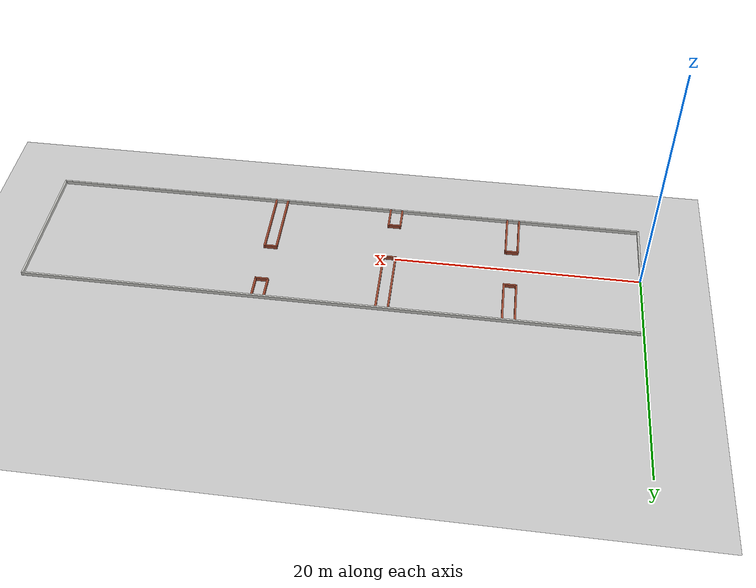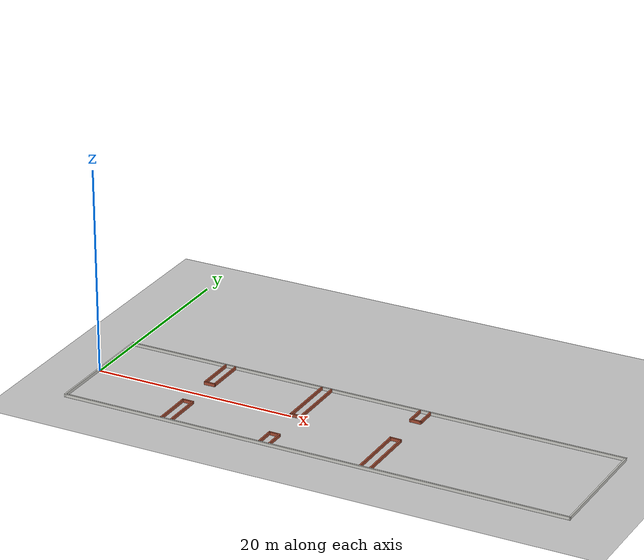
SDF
<sdf version="1.7">
 <world name="default">
  <light name="sun" type="directional">
   <pose>0 0 10 0 -0 0</pose>
   <diffuse>0.8 0.8 0.8 1</diffuse>
   <specular>0.2 0.2 0.2 1</specular>
   <attenuation>
    <range>1000</range>
    <constant>0.9</constant>
    <linear>0.01</linear>
    <quadratic>0.001</quadratic>
   </attenuation>
   <direction>-0.5 0.1 -0.9</direction>
   <spot><inner_angle>0</inner_angle><outer_angle>0</outer_angle><falloff>0</falloff></spot>
  </light>
  <model name="ground_plane">
   <static>1</static>
   <link name="link">
    <collision name="collision">
     <geometry><plane><normal>0 0 1</normal><size>100 100</size></plane></geometry>
     <surface>
      <contact><collide_bitmask>65535</collide_bitmask></contact>
      <friction><ode><mu>100</mu><mu2>50</mu2></ode></friction>
     </surface>
    </collision>
    <visual name="visual">
     <cast_shadows>0</cast_shadows>
     <geometry><plane><normal>0 0 1</normal><size>100 100</size></plane></geometry>
     <material>
      <script><uri>file://media/materials/scripts/gazebo.material</uri><name>Gazebo/Grey</name></script>
     </material>
    </visual>
   </link>
  </model>
  <gravity>0 0 -9.8</gravity>
  <magnetic_field>6e-06 2.3e-05 -4.2e-05</magnetic_field>
  <atmosphere type="adiabatic"/>
  <physics name="default_physics" default="0" type="ode">
   <max_step_size>0.001</max_step_size>
   <real_time_factor>1</real_time_factor>
   <real_time_update_rate>1000</real_time_update_rate>
  </physics>
  <scene><ambient>0.4 0.4 0.4 1</ambient><background>0.7 0.7 0.7 1</background><shadows>1</shadows></scene>
  <spherical_coordinates>
   <surface_model>EARTH_WGS84</surface_model>
   <latitude_deg>0</latitude_deg>
   <longitude_deg>0</longitude_deg>
   <elevation>0</elevation>
   <heading_deg>0</heading_deg>
  </spherical_coordinates>
  <model name="RaL_Tiles">
   <pose>25 0 0 0 -0 0</pose>
   <link name="Wall_0">
    <collision name="Wall_0_Collision">
     <geometry><box><size>12.15 0.15 0.3</size></box></geometry>
     <pose>0 0 0.15 0 -0 0</pose>
    </collision>
    <visual name="Wall_0_Visual">
     <pose>0 0 0.15 0 -0 0</pose>
     <geometry><box><size>12.15 0.15 0.3</size></box></geometry>
     <material>
      <script><uri>file://media/materials/scripts/gazebo.material</uri><name>Gazebo/CeilingTiled</name></script>
      <ambient>1 1 1 1</ambient>
     </material>
     <meta><layer>0</layer></meta>
    </visual>
    <pose>-25 0 0 0 -0 -1.5708</pose>
   </link>
   <link name="Wall_2">
    <collision name="Wall_2_Collision">
     <geometry><box><size>50.15 0.15 0.3</size></box></geometry>
     <pose>0 0 0.15 0 -0 0</pose>
    </collision>
    <visual name="Wall_2_Visual">
     <pose>0 0 0.15 0 -0 0</pose>
     <geometry><box><size>50.15 0.15 0.3</size></box></geometry>
     <material>
      <script><uri>file://media/materials/scripts/gazebo.material</uri><name>Gazebo/CeilingTiled</name></script>
      <ambient>1 1 1 1</ambient>
     </material>
     <meta><layer>0</layer></meta>
    </visual>
    <pose>0 6 0 0 -0 0</pose>
   </link>
   <link name="Wall_4">
    <collision name="Wall_4_Collision">
     <geometry><box><size>50.15 0.15 0.3</size></box></geometry>
     <pose>0 0 0.15 0 -0 0</pose>
    </collision>
    <visual name="Wall_4_Visual">
     <pose>0 0 0.15 0 -0 0</pose>
     <geometry><box><size>50.15 0.15 0.3</size></box></geometry>
     <material>
      <script><uri>file://media/materials/scripts/gazebo.material</uri><name>Gazebo/CeilingTiled</name></script>
      <ambient>1 1 1 1</ambient>
     </material>
     <meta><layer>0</layer></meta>
    </visual>
    <pose>0 -6 0 0 -0 0</pose>
   </link>
   <link name="Wall_6">
    <collision name="Wall_6_Collision">
     <geometry><box><size>12.15 0.15 0.3</size></box></geometry>
     <pose>0 0 0.15 0 -0 0</pose>
    </collision>
    <visual name="Wall_6_Visual">
     <pose>0 0 0.15 0 -0 0</pose>
     <geometry><box><size>12.15 0.15 0.3</size></box></geometry>
     <material>
      <script><uri>file://media/materials/scripts/gazebo.material</uri><name>Gazebo/CeilingTiled</name></script>
      <ambient>1 1 1 1</ambient>
     </material>
     <meta><layer>0</layer></meta>
    </visual>
    <pose>25 0 0 0 -0 -1.5708</pose>
   </link>
   <static>1</static>
  </model>
  <model name="RaL_Bricks">
   <pose>15.5375 -0 0 0 -0 0</pose>
   <link name="Wall_10">
    <collision name="Wall_10_Collision">
     <geometry><box><size>4.05 0.15 0.3</size></box></geometry>
     <pose>0 0 0.15 0 -0 0</pose>
    </collision>
    <visual name="Wall_10_Visual">
     <pose>0 0 0.15 0 -0 0</pose>
     <geometry><box><size>4.05 0.15 0.3</size></box></geometry>
     <material>
      <script><uri>file://media/materials/scripts/gazebo.material</uri><name>Gazebo/Bricks</name></script>
      <ambient>1 1 1 1</ambient>
     </material>
     <meta><layer>0</layer></meta>
    </visual>
    <pose>-4.5375 3.95 0 0 -0 -1.5708</pose>
   </link>
   <link name="Wall_12">
    <collision name="Wall_12_Collision">
     <geometry><box><size>1.15 0.15 0.3</size></box></geometry>
     <pose>0 0 0.15 0 -0 0</pose>
    </collision>
    <visual name="Wall_12_Visual">
     <pose>0 0 0.15 0 -0 0</pose>
     <geometry><box><size>1.15 0.15 0.3</size></box></geometry>
     <material>
      <script><uri>file://media/materials/scripts/gazebo.material</uri><name>Gazebo/Bricks</name></script>
      <ambient>1 1 1 1</ambient>
     </material>
     <meta><layer>0</layer></meta>
    </visual>
    <pose>-5.0375 2 0 0 -0 0</pose>
   </link>
   <link name="Wall_14">
    <collision name="Wall_14_Collision">
     <geometry><box><size>4.05 0.15 0.3</size></box></geometry>
     <pose>0 0 0.15 0 -0 0</pose>
    </collision>
    <visual name="Wall_14_Visual">
     <pose>0 0 0.15 0 -0 0</pose>
     <geometry><box><size>4.05 0.15 0.3</size></box></geometry>
     <material>
      <script><uri>file://media/materials/scripts/gazebo.material</uri><name>Gazebo/Bricks</name></script>
      <ambient>1 1 1 1</ambient>
     </material>
     <meta><layer>0</layer></meta>
    </visual>
    <pose>-5.5375 -3.95 0 0 -0 1.5708</pose>
   </link>
   <link name="Wall_16">
    <collision name="Wall_16_Collision">
     <geometry><box><size>4.05 0.15 0.3</size></box></geometry>
     <pose>0 0 0.15 0 -0 0</pose>
    </collision>
    <visual name="Wall_16_Visual">
     <pose>0 0 0.15 0 -0 0</pose>
     <geometry><box><size>4.05 0.15 0.3</size></box></geometry>
     <material>
      <script><uri>file://media/materials/scripts/gazebo.material</uri><name>Gazebo/Bricks</name></script>
      <ambient>1 1 1 1</ambient>
     </material>
     <meta><layer>0</layer></meta>
    </visual>
    <pose>-4.5375 -3.95 0 0 -0 1.5708</pose>
   </link>
   <link name="Wall_18">
    <collision name="Wall_18_Collision">
     <geometry><box><size>1.15 0.15 0.3</size></box></geometry>
     <pose>0 0 0.15 0 -0 0</pose>
    </collision>
    <visual name="Wall_18_Visual">
     <pose>0 0 0.15 0 -0 0</pose>
     <geometry><box><size>1.15 0.15 0.3</size></box></geometry>
     <material>
      <script><uri>file://media/materials/scripts/gazebo.material</uri><name>Gazebo/Bricks</name></script>
      <ambient>1 1 1 1</ambient>
     </material>
     <meta><layer>0</layer></meta>
    </visual>
    <pose>-5.0375 -2 0 0 -0 0</pose>
   </link>
   <link name="Wall_20">
    <collision name="Wall_20_Collision">
     <geometry><box><size>6.05 0.15 0.3</size></box></geometry>
     <pose>0 0 0.15 0 -0 0</pose>
    </collision>
    <visual name="Wall_20_Visual">
     <pose>0 0 0.15 0 -0 0</pose>
     <geometry><box><size>6.05 0.15 0.3</size></box></geometry>
     <material>
      <script><uri>file://media/materials/scripts/gazebo.material</uri><name>Gazebo/Bricks</name></script>
      <ambient>1 1 1 1</ambient>
     </material>
     <meta><layer>0</layer></meta>
    </visual>
    <pose>4.4625 2.95 0 0 -0 -1.5708</pose>
   </link>
   <link name="Wall_22">
    <collision name="Wall_22_Collision">
     <geometry><box><size>1.15 0.15 0.3</size></box></geometry>
     <pose>0 0 0.15 0 -0 0</pose>
    </collision>
    <visual name="Wall_22_Visual">
     <pose>0 0 0.15 0 -0 0</pose>
     <geometry><box><size>1.15 0.15 0.3</size></box></geometry>
     <material>
      <script><uri>file://media/materials/scripts/gazebo.material</uri><name>Gazebo/Bricks</name></script>
      <ambient>1 1 1 1</ambient>
     </material>
     <meta><layer>0</layer></meta>
    </visual>
    <pose>4.9625 0 0 0 -0 0</pose>
   </link>
   <link name="Wall_24">
    <collision name="Wall_24_Collision">
     <geometry><box><size>6.05 0.15 0.3</size></box></geometry>
     <pose>0 0 0.15 0 -0 0</pose>
    </collision>
    <visual name="Wall_24_Visual">
     <pose>0 0 0.15 0 -0 0</pose>
     <geometry><box><size>6.05 0.15 0.3</size></box></geometry>
     <material>
      <script><uri>file://media/materials/scripts/gazebo.material</uri><name>Gazebo/Bricks</name></script>
      <ambient>1 1 1 1</ambient>
     </material>
     <meta><layer>0</layer></meta>
    </visual>
    <pose>5.4625 2.95 0 0 -0 -1.5708</pose>
   </link>
   <link name="Wall_26">
    <collision name="Wall_26_Collision">
     <geometry><box><size>2.05 0.15 0.3</size></box></geometry>
     <pose>0 0 0.15 0 -0 0</pose>
    </collision>
    <visual name="Wall_26_Visual">
     <pose>0 0 0.15 0 -0 0</pose>
     <geometry><box><size>2.05 0.15 0.3</size></box></geometry>
     <material>
      <script><uri>file://media/materials/scripts/gazebo.material</uri><name>Gazebo/Bricks</name></script>
      <ambient>1 1 1 1</ambient>
     </material>
     <meta><layer>0</layer></meta>
    </visual>
    <pose>5.4625 -4.95 0 0 -0 1.5708</pose>
   </link>
   <link name="Wall_28">
    <collision name="Wall_28_Collision">
     <geometry><box><size>2.05 0.15 0.3</size></box></geometry>
     <pose>0 0 0.15 0 -0 0</pose>
    </collision>
    <visual name="Wall_28_Visual">
     <pose>0 0 0.15 0 -0 0</pose>
     <geometry><box><size>2.05 0.15 0.3</size></box></geometry>
     <material>
      <script><uri>file://media/materials/scripts/gazebo.material</uri><name>Gazebo/Bricks</name></script>
      <ambient>1 1 1 1</ambient>
     </material>
     <meta><layer>0</layer></meta>
    </visual>
    <pose>4.4625 -4.95 0 0 -0 1.5708</pose>
   </link>
   <link name="Wall_30">
    <collision name="Wall_30_Collision">
     <geometry><box><size>1.15 0.15 0.3</size></box></geometry>
     <pose>0 0 0.15 0 -0 0</pose>
    </collision>
    <visual name="Wall_30_Visual">
     <pose>0 0 0.15 0 -0 0</pose>
     <geometry><box><size>1.15 0.15 0.3</size></box></geometry>
     <material>
      <script><uri>file://media/materials/scripts/gazebo.material</uri><name>Gazebo/Bricks</name></script>
      <ambient>1 1 1 1</ambient>
     </material>
     <meta><layer>0</layer></meta>
    </visual>
    <pose>4.9625 -4 0 0 -0 0</pose>
   </link>
   <link name="Wall_32">
    <collision name="Wall_32_Collision">
     <geometry><box><size>2.05 0.15 0.3</size></box></geometry>
     <pose>0 0 0.15 0 -0 0</pose>
    </collision>
    <visual name="Wall_32_Visual">
     <pose>0 0 0.15 0 -0 0</pose>
     <geometry><box><size>2.05 0.15 0.3</size></box></geometry>
     <material>
      <script><uri>file://media/materials/scripts/gazebo.material</uri><name>Gazebo/Bricks</name></script>
      <ambient>1 1 1 1</ambient>
     </material>
     <meta><layer>0</layer></meta>
    </visual>
    <pose>14.4625 4.95 0 0 -0 -1.5708</pose>
   </link>
   <link name="Wall_34">
    <collision name="Wall_34_Collision">
     <geometry><box><size>2.05 0.15 0.3</size></box></geometry>
     <pose>0 0 0.15 0 -0 0</pose>
    </collision>
    <visual name="Wall_34_Visual">
     <pose>0 0 0.15 0 -0 0</pose>
     <geometry><box><size>2.05 0.15 0.3</size></box></geometry>
     <material>
      <script><uri>file://media/materials/scripts/gazebo.material</uri><name>Gazebo/Bricks</name></script>
      <ambient>1 1 1 1</ambient>
     </material>
     <meta><layer>0</layer></meta>
    </visual>
    <pose>15.4625 4.95 0 0 -0 -1.5708</pose>
   </link>
   <link name="Wall_36">
    <collision name="Wall_36_Collision">
     <geometry><box><size>1.15 0.15 0.3</size></box></geometry>
     <pose>0 0 0.15 0 -0 0</pose>
    </collision>
    <visual name="Wall_36_Visual">
     <pose>0 0 0.15 0 -0 0</pose>
     <geometry><box><size>1.15 0.15 0.3</size></box></geometry>
     <material>
      <script><uri>file://media/materials/scripts/gazebo.material</uri><name>Gazebo/Bricks</name></script>
      <ambient>1 1 1 1</ambient>
     </material>
     <meta><layer>0</layer></meta>
    </visual>
    <pose>14.9625 4 0 0 -0 0</pose>
   </link>
   <link name="Wall_38">
    <collision name="Wall_38_Collision">
     <geometry><box><size>6.05 0.15 0.3</size></box></geometry>
     <pose>0 0 0.15 0 -0 0</pose>
    </collision>
    <visual name="Wall_38_Visual">
     <pose>0 0 0.15 0 -0 0</pose>
     <geometry><box><size>6.05 0.15 0.3</size></box></geometry>
     <material>
      <script><uri>file://media/materials/scripts/gazebo.material</uri><name>Gazebo/Bricks</name></script>
      <ambient>1 1 1 1</ambient>
     </material>
     <meta><layer>0</layer></meta>
    </visual>
    <pose>14.4625 -2.95 0 0 -0 -1.5708</pose>
   </link>
   <link name="Wall_40">
    <collision name="Wall_40_Collision">
     <geometry><box><size>6.05 0.15 0.3</size></box></geometry>
     <pose>0 0 0.15 0 -0 0</pose>
    </collision>
    <visual name="Wall_40_Visual">
     <pose>0 0 0.15 0 -0 0</pose>
     <geometry><box><size>6.05 0.15 0.3</size></box></geometry>
     <material>
      <script><uri>file://media/materials/scripts/gazebo.material</uri><name>Gazebo/Bricks</name></script>
      <ambient>1 1 1 1</ambient>
     </material>
     <meta><layer>0</layer></meta>
    </visual>
    <pose>15.4625 -2.95 0 0 -0 1.5708</pose>
   </link>
   <link name="Wall_42">
    <collision name="Wall_42_Collision">
     <geometry><box><size>1.15 0.15 0.3</size></box></geometry>
     <pose>0 0 0.15 0 -0 0</pose>
    </collision>
    <visual name="Wall_42_Visual">
     <pose>0 0 0.15 0 -0 0</pose>
     <geometry><box><size>1.15 0.15 0.3</size></box></geometry>
     <material>
      <script><uri>file://media/materials/scripts/gazebo.material</uri><name>Gazebo/Bricks</name></script>
      <ambient>1 1 1 1</ambient>
     </material>
     <meta><layer>0</layer></meta>
    </visual>
    <pose>14.9625 0 0 0 -0 0</pose>
   </link>
   <link name="Wall_8">
    <collision name="Wall_8_Collision">
     <geometry><box><size>4.05 0.15 0.3</size></box></geometry>
     <pose>0 0 0.15 0 -0 0</pose>
    </collision>
    <visual name="Wall_8_Visual">
     <pose>0 0 0.15 0 -0 0</pose>
     <geometry><box><size>4.05 0.15 0.3</size></box></geometry>
     <material>
      <script><uri>file://media/materials/scripts/gazebo.material</uri><name>Gazebo/Bricks</name></script>
      <ambient>1 1 1 1</ambient>
     </material>
     <meta><layer>0</layer></meta>
    </visual>
    <pose>-5.5375 3.95 0 0 -0 -1.5708</pose>
   </link>
   <static>1</static>
  </model>
 </world>
</sdf>
